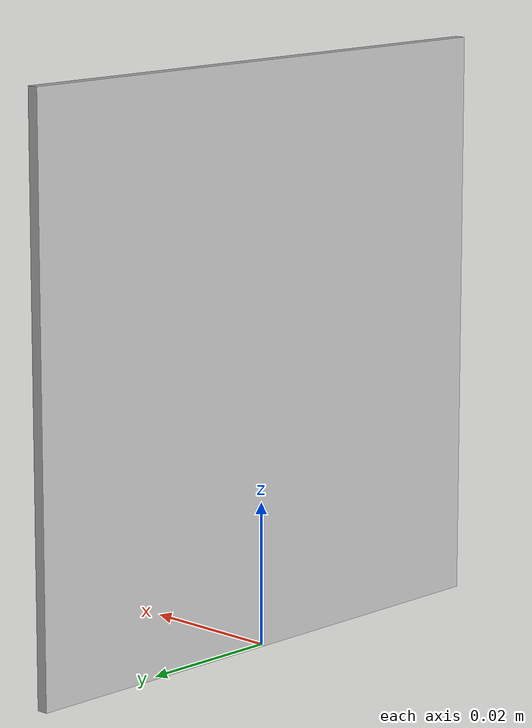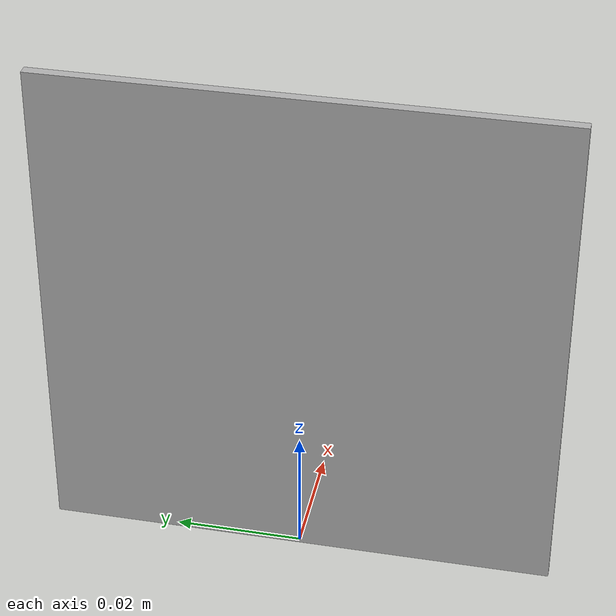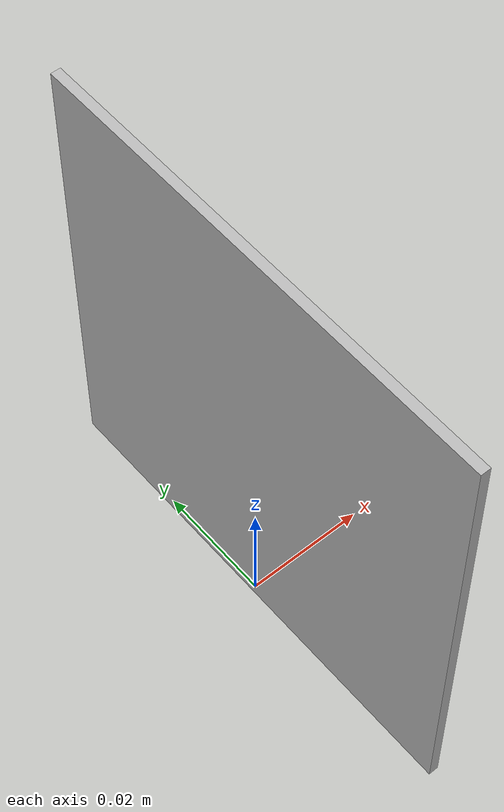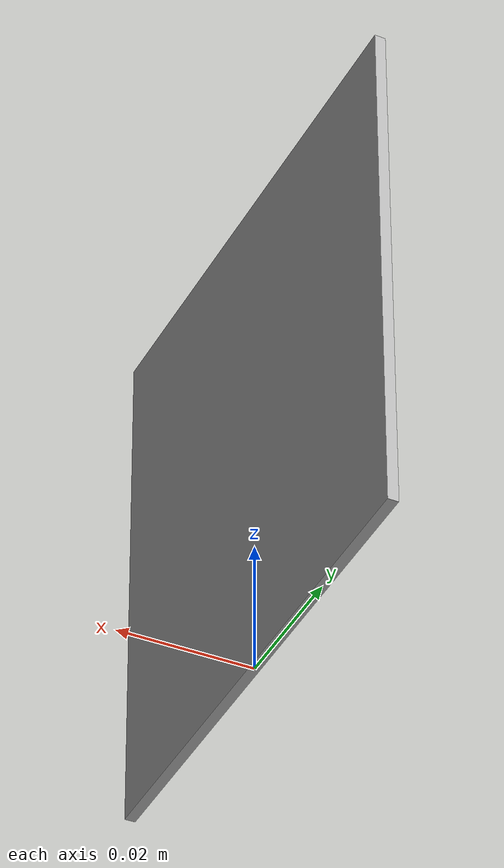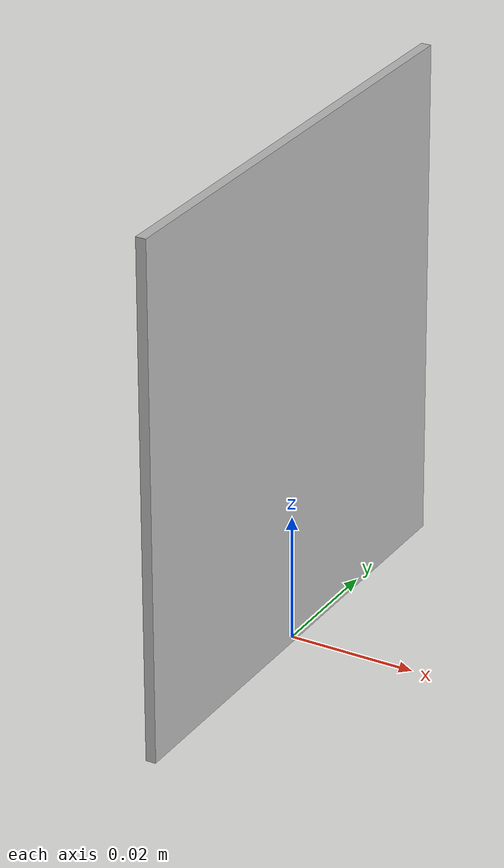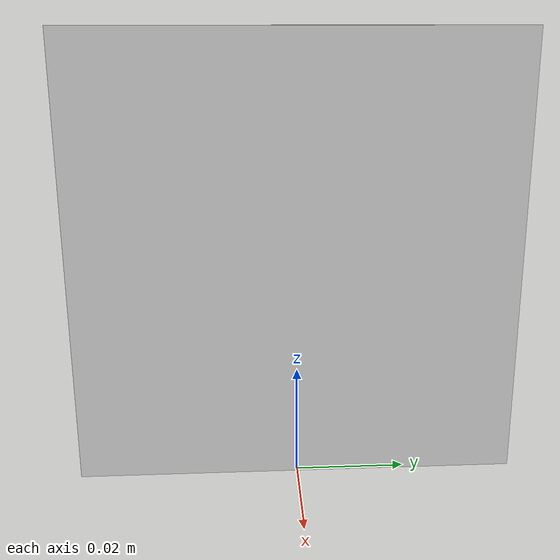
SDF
<?xml version="1.0" ?><sdf version="1.4">
  <model name="MarkerData_1">
    <static>true</static>
    <link name="link">
      <visual name="visual">
        <geometry>
          <mesh>
            <uri>model://markerdata_1/meshes/MarkerData_1.dae</uri>
          <scale>0.16 0.16 0.16</scale></mesh>
        </geometry>
      </visual>
    </link>
  </model>
</sdf>
